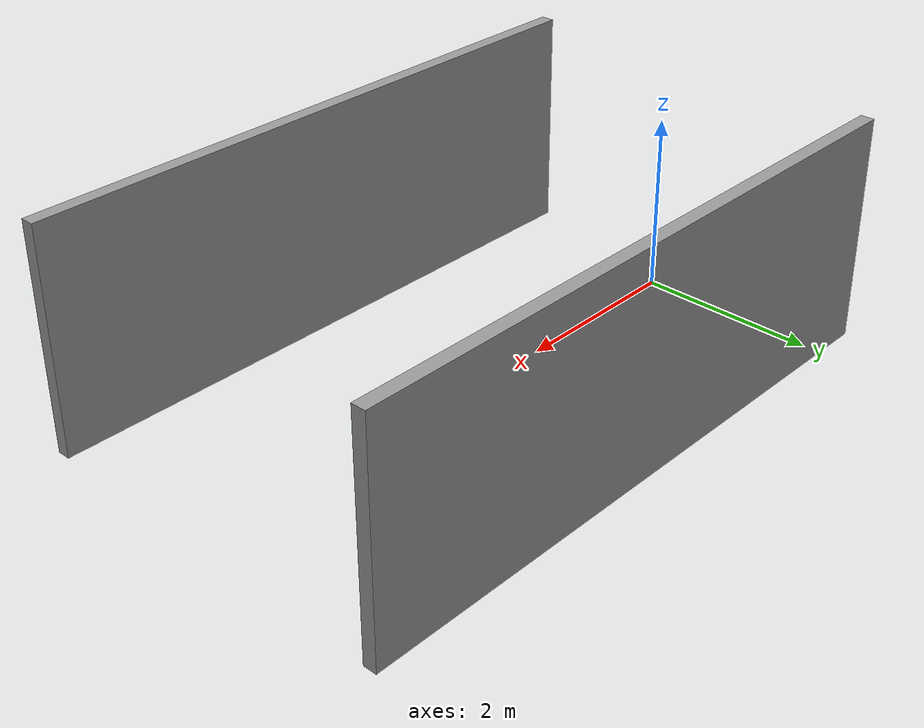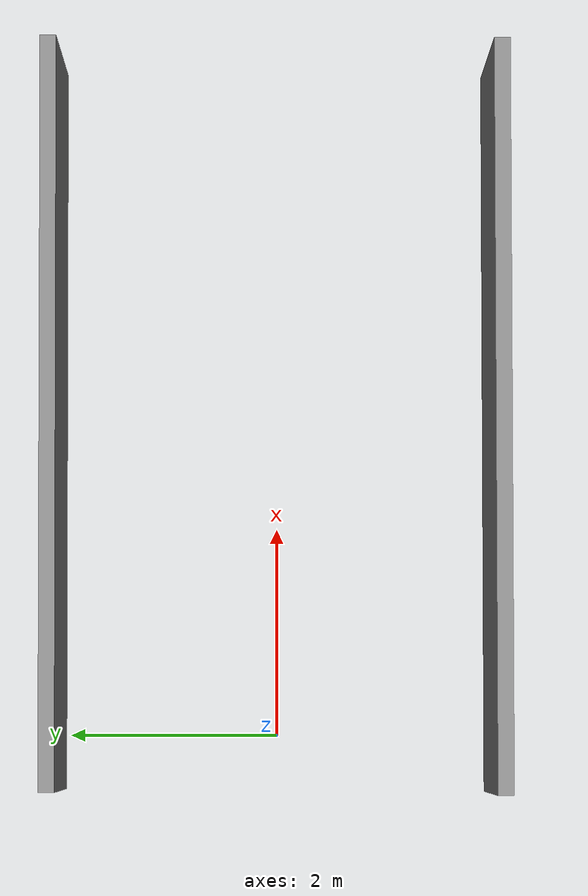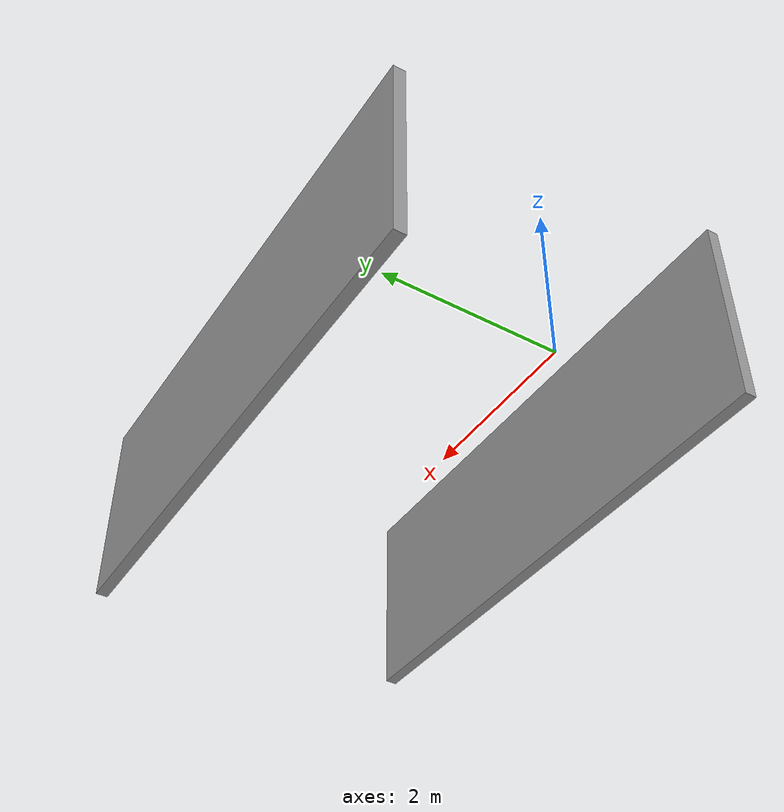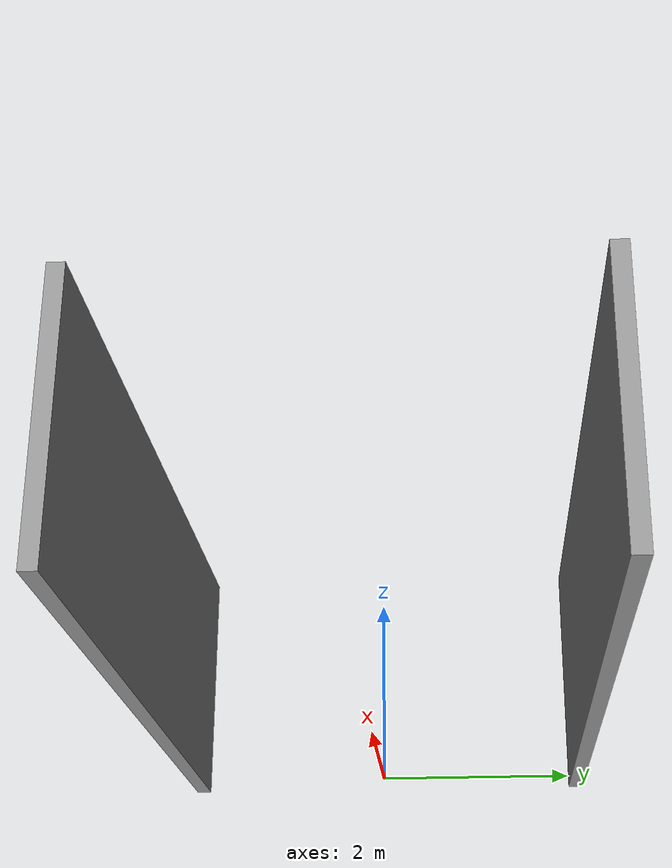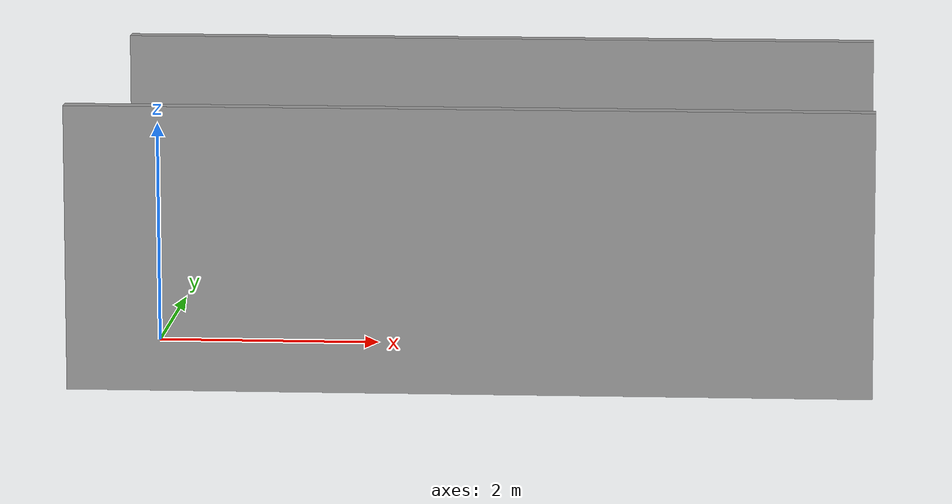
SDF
<?xml version='1.0'?>
<sdf version='1.6'>
  <model name='Untitled'>
    <pose frame=''>2.97 0.01575 0 0 -0 0</pose>
    <link name='Wall_3'>
      <collision name='Wall_3_Collision'>
        <geometry>
          <box>
            <size>7 0.15 2.5</size>
          </box>
        </geometry>
        <pose frame=''>0 0 1.25 0 -0 0</pose>
      </collision>
      <visual name='Wall_3_Visual'>
        <pose frame=''>0 0 1.25 0 -0 0</pose>
        <geometry>
          <box>
            <size>7 0.15 2.5</size>
          </box>
        </geometry>
        <material>
          <script>
            <uri>file://media/materials/scripts/gazebo.material</uri>
            <name>Gazebo/Grey</name>
          </script>
          <ambient>1 1 1 1</ambient>
        </material>
      </visual>
      <pose frame=''>-0.015 -2.10575 0 0 -0 0</pose>
    </link>
    <link name='Wall_6'>
      <collision name='Wall_6_Collision'>
        <geometry>
          <box>
            <size>7 0.15 2.5</size>
          </box>
        </geometry>
        <pose frame=''>0 0 1.25 0 -0 0</pose>
      </collision>
      <visual name='Wall_6_Visual'>
        <pose frame=''>0 0 1.25 0 -0 0</pose>
        <geometry>
          <box>
            <size>7 0.15 2.5</size>
          </box>
        </geometry>
        <material>
          <script>
            <uri>file://media/materials/scripts/gazebo.material</uri>
            <name>Gazebo/Grey</name>
          </script>
          <ambient>1 1 1 1</ambient>
        </material>
      </visual>
      <pose frame=''>0.015 2.10575 0 0 -0 0</pose>
    </link>
    <static>1</static>
  </model>
</sdf>
